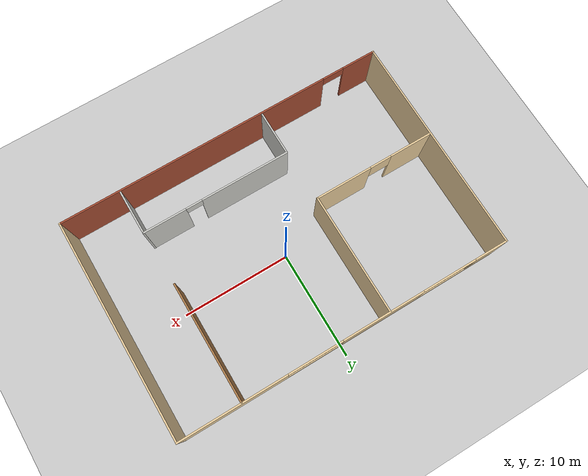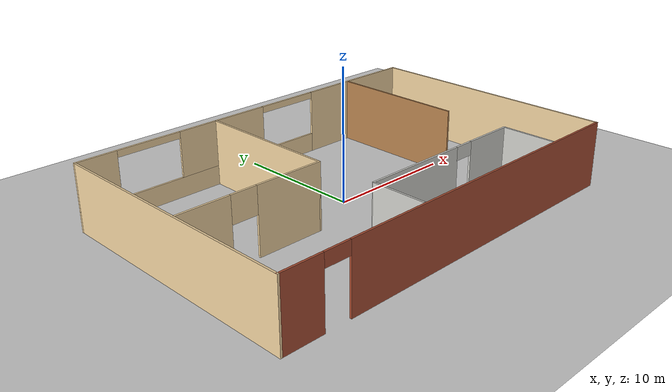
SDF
<sdf version="1.6">
 <world name="default">
  <model name="ground_plane">
   <static>1</static>
   <link name="link">
    <collision name="collision">
     <geometry><plane><normal>0 0 1</normal><size>100 100</size></plane></geometry>
     <surface><friction><ode><mu>100</mu><mu2>50</mu2></ode></friction></surface>
    </collision>
    <visual name="visual">
     <cast_shadows>0</cast_shadows>
     <geometry><plane><normal>0 0 1</normal><size>100 100</size></plane></geometry>
     <material>
      <script><uri>file://media/materials/scripts/gazebo.material</uri><name>Gazebo/Grey</name></script>
     </material>
    </visual>
   </link>
  </model>
  <model name="house_robot">
   <link name="Wall_103">
    <pose>-3.96202 4.4525 0 0 -0 1.5708</pose>
    <visual name="Wall_103_Visual">
     <pose>0 0 2.5 0 -0 0</pose>
     <geometry><box><size>11 0.15 5</size></box></geometry>
     <material>
      <script><uri>file://media/materials/scripts/gazebo.material</uri><name>Gazebo/Grey</name></script>
      <ambient>0.921569 0.807843 0.615686 1</ambient>
      <diffuse>0.7 0.7 0.7 1</diffuse>
      <specular>0.01 0.01 0.01 1</specular>
      <emissive>0 0 0 1</emissive>
     </material>
    </visual>
    <collision name="Wall_103_Collision">
     <pose>0 0 2.5 0 -0 0</pose>
     <geometry><box><size>11 0.15 5</size></box></geometry>
     <surface>
      <friction>
       <ode><mu>1</mu><mu2>1</mu2><fdir1>0 0 0</fdir1><slip1>0</slip1><slip2>0</slip2></ode>
       <torsional>
        <coefficient>1</coefficient>
        <patch_radius>0</patch_radius>
        <surface_radius>0</surface_radius>
        <use_patch_radius>1</use_patch_radius>
        <ode><slip>0</slip></ode>
       </torsional>
      </friction>
      <bounce><restitution_coefficient>0</restitution_coefficient><threshold>1e+06</threshold></bounce>
      <contact>
       <collide_without_contact>0</collide_without_contact>
       <collide_without_contact_bitmask>1</collide_without_contact_bitmask>
       <collide_bitmask>1</collide_bitmask>
       <ode>
        <soft_cfm>0</soft_cfm>
        <soft_erp>0.2</soft_erp>
        <kp>1e+13</kp>
        <kd>1</kd>
        <max_vel>0.01</max_vel>
        <min_depth>0</min_depth>
       </ode>
       <bullet>
        <split_impulse>1</split_impulse>
        <split_impulse_penetration_threshold>-0.01</split_impulse_penetration_threshold>
        <soft_cfm>0</soft_cfm>
        <soft_erp>0.2</soft_erp>
        <kp>1e+13</kp>
        <kd>1</kd>
       </bullet>
      </contact>
     </surface>
    </collision>
   </link>
   <link name="Wall_105">
    <pose>9.54899 4.5795 0 0 0 -1.5708</pose>
    <visual name="Wall_105_Visual">
     <pose>0 0 2.5 0 -0 0</pose>
     <geometry><box><size>10.75 0.15 5</size></box></geometry>
     <material>
      <script><uri>file://media/materials/scripts/gazebo.material</uri><name>Gazebo/Wood</name></script>
      <ambient>0.921569 0.807843 0.615686 1</ambient>
      <diffuse>1 1 1 1</diffuse>
      <specular>0.2 0.2 0.2 1</specular>
      <emissive>0 0 0 1</emissive>
     </material>
    </visual>
    <collision name="Wall_105_Collision">
     <pose>0 0 2.5 0 -0 0</pose>
     <geometry><box><size>10.75 0.15 5</size></box></geometry>
     <surface>
      <friction>
       <ode><mu>1</mu><mu2>1</mu2><fdir1>0 0 0</fdir1><slip1>0</slip1><slip2>0</slip2></ode>
       <torsional>
        <coefficient>1</coefficient>
        <patch_radius>0</patch_radius>
        <surface_radius>0</surface_radius>
        <use_patch_radius>1</use_patch_radius>
        <ode><slip>0</slip></ode>
       </torsional>
      </friction>
      <bounce><restitution_coefficient>0</restitution_coefficient><threshold>1e+06</threshold></bounce>
      <contact>
       <collide_without_contact>0</collide_without_contact>
       <collide_without_contact_bitmask>1</collide_without_contact_bitmask>
       <collide_bitmask>1</collide_bitmask>
       <ode>
        <soft_cfm>0</soft_cfm>
        <soft_erp>0.2</soft_erp>
        <kp>1e+13</kp>
        <kd>1</kd>
        <max_vel>0.01</max_vel>
        <min_depth>0</min_depth>
       </ode>
       <bullet>
        <split_impulse>1</split_impulse>
        <split_impulse_penetration_threshold>-0.01</split_impulse_penetration_threshold>
        <soft_cfm>0</soft_cfm>
        <soft_erp>0.2</soft_erp>
        <kp>1e+13</kp>
        <kd>1</kd>
       </bullet>
      </contact>
     </surface>
    </collision>
   </link>
   <link name="Wall_107">
    <pose>15.175 0.0265 0 0 -0 1.5708</pose>
    <visual name="Wall_107_Visual">
     <pose>0 0 2.5 0 -0 0</pose>
     <geometry><box><size>20 0.15 5</size></box></geometry>
     <material>
      <script><uri>file://media/materials/scripts/gazebo.material</uri><name>Gazebo/Grey</name></script>
      <ambient>0.921569 0.807843 0.615686 1</ambient>
      <diffuse>0.7 0.7 0.7 1</diffuse>
      <specular>0.01 0.01 0.01 1</specular>
      <emissive>0 0 0 1</emissive>
     </material>
    </visual>
    <collision name="Wall_107_Collision">
     <pose>0 0 2.5 0 -0 0</pose>
     <geometry><box><size>20 0.15 5</size></box></geometry>
     <surface>
      <friction>
       <ode><mu>1</mu><mu2>1</mu2><fdir1>0 0 0</fdir1><slip1>0</slip1><slip2>0</slip2></ode>
       <torsional>
        <coefficient>1</coefficient>
        <patch_radius>0</patch_radius>
        <surface_radius>0</surface_radius>
        <use_patch_radius>1</use_patch_radius>
        <ode><slip>0</slip></ode>
       </torsional>
      </friction>
      <bounce><restitution_coefficient>0</restitution_coefficient><threshold>1e+06</threshold></bounce>
      <contact>
       <collide_without_contact>0</collide_without_contact>
       <collide_without_contact_bitmask>1</collide_without_contact_bitmask>
       <collide_bitmask>1</collide_bitmask>
       <ode>
        <soft_cfm>0</soft_cfm>
        <soft_erp>0.2</soft_erp>
        <kp>1e+13</kp>
        <kd>1</kd>
        <max_vel>0.01</max_vel>
        <min_depth>0</min_depth>
       </ode>
       <bullet>
        <split_impulse>1</split_impulse>
        <split_impulse_penetration_threshold>-0.01</split_impulse_penetration_threshold>
        <soft_cfm>0</soft_cfm>
        <soft_erp>0.2</soft_erp>
        <kp>1e+13</kp>
        <kd>1</kd>
       </bullet>
      </contact>
     </surface>
    </collision>
   </link>
   <link name="Wall_108">
    <pose>-1.5e-05 9.9515 0 0 -0 3.14159</pose>
    <visual name="Wall_108_Visual_1">
     <pose>4.92284 0 0.75 0 -0 0</pose>
     <geometry><box><size>20.6543 0.15 1.5</size></box></geometry>
     <material>
      <script><uri>file://media/materials/scripts/gazebo.material</uri><name>Gazebo/Grey</name></script>
      <ambient>0.921569 0.807843 0.615686 1</ambient>
      <diffuse>0.7 0.7 0.7 1</diffuse>
      <specular>0.01 0.01 0.01 1</specular>
      <emissive>0 0 0 1</emissive>
     </material>
    </visual>
    <visual name="Wall_108_Visual_4">
     <pose>-2.90432 0 4.75 0 -0 0</pose>
     <geometry><box><size>5 0.15 0.5</size></box></geometry>
     <material>
      <script><uri>file://media/materials/scripts/gazebo.material</uri><name>Gazebo/Grey</name></script>
      <ambient>0.921569 0.807843 0.615686 1</ambient>
      <diffuse>0.7 0.7 0.7 1</diffuse>
      <specular>0.01 0.01 0.01 1</specular>
      <emissive>0 0 0 1</emissive>
     </material>
    </visual>
    <visual name="Wall_108_Visual_5">
     <pose>9.64746 0 4.75 0 -0 0</pose>
     <geometry><box><size>5 0.15 0.5</size></box></geometry>
     <material>
      <script><uri>file://media/materials/scripts/gazebo.material</uri><name>Gazebo/Grey</name></script>
      <ambient>0.921569 0.807843 0.615686 1</ambient>
      <diffuse>0.7 0.7 0.7 1</diffuse>
      <specular>0.01 0.01 0.01 1</specular>
      <emissive>0 0 0 1</emissive>
     </material>
    </visual>
    <visual name="Wall_108_Visual_2">
     <pose>3.37157 0 3.25 0 -0 0</pose>
     <geometry><box><size>7.55178 0.15 3.5</size></box></geometry>
     <material>
      <script><uri>file://media/materials/scripts/gazebo.material</uri><name>Gazebo/Grey</name></script>
      <ambient>0.921569 0.807843 0.615686 1</ambient>
      <diffuse>0.7 0.7 0.7 1</diffuse>
      <specular>0.01 0.01 0.01 1</specular>
      <emissive>0 0 0 1</emissive>
     </material>
    </visual>
    <visual name="Wall_108_Visual_0">
     <pose>-10.3272 0 2.5 0 -0 0</pose>
     <geometry><box><size>9.84568 0.15 5</size></box></geometry>
     <material>
      <script><uri>file://media/materials/scripts/gazebo.material</uri><name>Gazebo/Grey</name></script>
      <ambient>0.921569 0.807843 0.615686 1</ambient>
      <diffuse>0.7 0.7 0.7 1</diffuse>
      <specular>0.01 0.01 0.01 1</specular>
      <emissive>0 0 0 1</emissive>
     </material>
    </visual>
    <visual name="Wall_108_Visual_3">
     <pose>13.6987 0 3.25 0 -0 0</pose>
     <geometry><box><size>3.10254 0.15 3.5</size></box></geometry>
     <material>
      <script><uri>file://media/materials/scripts/gazebo.material</uri><name>Gazebo/Grey</name></script>
      <ambient>0.921569 0.807843 0.615686 1</ambient>
      <diffuse>0.7 0.7 0.7 1</diffuse>
      <specular>0.01 0.01 0.01 1</specular>
      <emissive>0 0 0 1</emissive>
     </material>
    </visual>
    <collision name="Wall_108_Collision_0">
     <pose>-10.3272 0 2.5 0 -0 0</pose>
     <geometry><box><size>9.84568 0.15 5</size></box></geometry>
     <surface>
      <friction>
       <ode><mu>1</mu><mu2>1</mu2><fdir1>0 0 0</fdir1><slip1>0</slip1><slip2>0</slip2></ode>
       <torsional>
        <coefficient>1</coefficient>
        <patch_radius>0</patch_radius>
        <surface_radius>0</surface_radius>
        <use_patch_radius>1</use_patch_radius>
        <ode><slip>0</slip></ode>
       </torsional>
      </friction>
      <bounce><restitution_coefficient>0</restitution_coefficient><threshold>1e+06</threshold></bounce>
      <contact>
       <collide_without_contact>0</collide_without_contact>
       <collide_without_contact_bitmask>1</collide_without_contact_bitmask>
       <collide_bitmask>1</collide_bitmask>
       <ode>
        <soft_cfm>0</soft_cfm>
        <soft_erp>0.2</soft_erp>
        <kp>1e+13</kp>
        <kd>1</kd>
        <max_vel>0.01</max_vel>
        <min_depth>0</min_depth>
       </ode>
       <bullet>
        <split_impulse>1</split_impulse>
        <split_impulse_penetration_threshold>-0.01</split_impulse_penetration_threshold>
        <soft_cfm>0</soft_cfm>
        <soft_erp>0.2</soft_erp>
        <kp>1e+13</kp>
        <kd>1</kd>
       </bullet>
      </contact>
     </surface>
    </collision>
    <collision name="Wall_108_Collision_1">
     <pose>4.92284 0 0.75 0 -0 0</pose>
     <geometry><box><size>20.6543 0.15 1.5</size></box></geometry>
     <surface>
      <friction>
       <ode><mu>1</mu><mu2>1</mu2><fdir1>0 0 0</fdir1><slip1>0</slip1><slip2>0</slip2></ode>
       <torsional>
        <coefficient>1</coefficient>
        <patch_radius>0</patch_radius>
        <surface_radius>0</surface_radius>
        <use_patch_radius>1</use_patch_radius>
        <ode><slip>0</slip></ode>
       </torsional>
      </friction>
      <bounce><restitution_coefficient>0</restitution_coefficient><threshold>1e+06</threshold></bounce>
      <contact>
       <collide_without_contact>0</collide_without_contact>
       <collide_without_contact_bitmask>1</collide_without_contact_bitmask>
       <collide_bitmask>1</collide_bitmask>
       <ode>
        <soft_cfm>0</soft_cfm>
        <soft_erp>0.2</soft_erp>
        <kp>1e+13</kp>
        <kd>1</kd>
        <max_vel>0.01</max_vel>
        <min_depth>0</min_depth>
       </ode>
       <bullet>
        <split_impulse>1</split_impulse>
        <split_impulse_penetration_threshold>-0.01</split_impulse_penetration_threshold>
        <soft_cfm>0</soft_cfm>
        <soft_erp>0.2</soft_erp>
        <kp>1e+13</kp>
        <kd>1</kd>
       </bullet>
      </contact>
     </surface>
    </collision>
    <collision name="Wall_108_Collision_4">
     <pose>-2.90432 0 4.75 0 -0 0</pose>
     <geometry><box><size>5 0.15 0.5</size></box></geometry>
     <surface>
      <friction>
       <ode><mu>1</mu><mu2>1</mu2><fdir1>0 0 0</fdir1><slip1>0</slip1><slip2>0</slip2></ode>
       <torsional>
        <coefficient>1</coefficient>
        <patch_radius>0</patch_radius>
        <surface_radius>0</surface_radius>
        <use_patch_radius>1</use_patch_radius>
        <ode><slip>0</slip></ode>
       </torsional>
      </friction>
      <bounce><restitution_coefficient>0</restitution_coefficient><threshold>1e+06</threshold></bounce>
      <contact>
       <collide_without_contact>0</collide_without_contact>
       <collide_without_contact_bitmask>1</collide_without_contact_bitmask>
       <collide_bitmask>1</collide_bitmask>
       <ode>
        <soft_cfm>0</soft_cfm>
        <soft_erp>0.2</soft_erp>
        <kp>1e+13</kp>
        <kd>1</kd>
        <max_vel>0.01</max_vel>
        <min_depth>0</min_depth>
       </ode>
       <bullet>
        <split_impulse>1</split_impulse>
        <split_impulse_penetration_threshold>-0.01</split_impulse_penetration_threshold>
        <soft_cfm>0</soft_cfm>
        <soft_erp>0.2</soft_erp>
        <kp>1e+13</kp>
        <kd>1</kd>
       </bullet>
      </contact>
     </surface>
    </collision>
    <collision name="Wall_108_Collision_2">
     <pose>3.37157 0 3.25 0 -0 0</pose>
     <geometry><box><size>7.55178 0.15 3.5</size></box></geometry>
     <surface>
      <friction>
       <ode><mu>1</mu><mu2>1</mu2><fdir1>0 0 0</fdir1><slip1>0</slip1><slip2>0</slip2></ode>
       <torsional>
        <coefficient>1</coefficient>
        <patch_radius>0</patch_radius>
        <surface_radius>0</surface_radius>
        <use_patch_radius>1</use_patch_radius>
        <ode><slip>0</slip></ode>
       </torsional>
      </friction>
      <bounce><restitution_coefficient>0</restitution_coefficient><threshold>1e+06</threshold></bounce>
      <contact>
       <collide_without_contact>0</collide_without_contact>
       <collide_without_contact_bitmask>1</collide_without_contact_bitmask>
       <collide_bitmask>1</collide_bitmask>
       <ode>
        <soft_cfm>0</soft_cfm>
        <soft_erp>0.2</soft_erp>
        <kp>1e+13</kp>
        <kd>1</kd>
        <max_vel>0.01</max_vel>
        <min_depth>0</min_depth>
       </ode>
       <bullet>
        <split_impulse>1</split_impulse>
        <split_impulse_penetration_threshold>-0.01</split_impulse_penetration_threshold>
        <soft_cfm>0</soft_cfm>
        <soft_erp>0.2</soft_erp>
        <kp>1e+13</kp>
        <kd>1</kd>
       </bullet>
      </contact>
     </surface>
    </collision>
    <collision name="Wall_108_Collision_3">
     <pose>13.6987 0 3.25 0 -0 0</pose>
     <geometry><box><size>3.10254 0.15 3.5</size></box></geometry>
     <surface>
      <friction>
       <ode><mu>1</mu><mu2>1</mu2><fdir1>0 0 0</fdir1><slip1>0</slip1><slip2>0</slip2></ode>
       <torsional>
        <coefficient>1</coefficient>
        <patch_radius>0</patch_radius>
        <surface_radius>0</surface_radius>
        <use_patch_radius>1</use_patch_radius>
        <ode><slip>0</slip></ode>
       </torsional>
      </friction>
      <bounce><restitution_coefficient>0</restitution_coefficient><threshold>1e+06</threshold></bounce>
      <contact>
       <collide_without_contact>0</collide_without_contact>
       <collide_without_contact_bitmask>1</collide_without_contact_bitmask>
       <collide_bitmask>1</collide_bitmask>
       <ode>
        <soft_cfm>0</soft_cfm>
        <soft_erp>0.2</soft_erp>
        <kp>1e+13</kp>
        <kd>1</kd>
        <max_vel>0.01</max_vel>
        <min_depth>0</min_depth>
       </ode>
       <bullet>
        <split_impulse>1</split_impulse>
        <split_impulse_penetration_threshold>-0.01</split_impulse_penetration_threshold>
        <soft_cfm>0</soft_cfm>
        <soft_erp>0.2</soft_erp>
        <kp>1e+13</kp>
        <kd>1</kd>
       </bullet>
      </contact>
     </surface>
    </collision>
    <collision name="Wall_108_Collision_5">
     <pose>9.64746 0 4.75 0 -0 0</pose>
     <geometry><box><size>5 0.15 0.5</size></box></geometry>
     <surface>
      <friction>
       <ode><mu>1</mu><mu2>1</mu2><fdir1>0 0 0</fdir1><slip1>0</slip1><slip2>0</slip2></ode>
       <torsional>
        <coefficient>1</coefficient>
        <patch_radius>0</patch_radius>
        <surface_radius>0</surface_radius>
        <use_patch_radius>1</use_patch_radius>
        <ode><slip>0</slip></ode>
       </torsional>
      </friction>
      <bounce><restitution_coefficient>0</restitution_coefficient><threshold>1e+06</threshold></bounce>
      <contact>
       <collide_without_contact>0</collide_without_contact>
       <collide_without_contact_bitmask>1</collide_without_contact_bitmask>
       <collide_bitmask>1</collide_bitmask>
       <ode>
        <soft_cfm>0</soft_cfm>
        <soft_erp>0.2</soft_erp>
        <kp>1e+13</kp>
        <kd>1</kd>
        <max_vel>0.01</max_vel>
        <min_depth>0</min_depth>
       </ode>
       <bullet>
        <split_impulse>1</split_impulse>
        <split_impulse_penetration_threshold>-0.01</split_impulse_penetration_threshold>
        <soft_cfm>0</soft_cfm>
        <soft_erp>0.2</soft_erp>
        <kp>1e+13</kp>
        <kd>1</kd>
       </bullet>
      </contact>
     </surface>
    </collision>
   </link>
   <link name="Wall_109">
    <pose>-15.175 0.0265 0 0 0 -1.5708</pose>
    <visual name="Wall_109_Visual">
     <pose>0 0 2.5 0 -0 0</pose>
     <geometry><box><size>20 0.15 5</size></box></geometry>
     <material>
      <script><uri>file://media/materials/scripts/gazebo.material</uri><name>Gazebo/Grey</name></script>
      <ambient>0.921569 0.807843 0.615686 1</ambient>
      <diffuse>0.7 0.7 0.7 1</diffuse>
      <specular>0.01 0.01 0.01 1</specular>
      <emissive>0 0 0 1</emissive>
     </material>
    </visual>
    <collision name="Wall_109_Collision">
     <pose>0 0 2.5 0 -0 0</pose>
     <geometry><box><size>20 0.15 5</size></box></geometry>
     <surface>
      <friction>
       <ode><mu>1</mu><mu2>1</mu2><fdir1>0 0 0</fdir1><slip1>0</slip1><slip2>0</slip2></ode>
       <torsional>
        <coefficient>1</coefficient>
        <patch_radius>0</patch_radius>
        <surface_radius>0</surface_radius>
        <use_patch_radius>1</use_patch_radius>
        <ode><slip>0</slip></ode>
       </torsional>
      </friction>
      <bounce><restitution_coefficient>0</restitution_coefficient><threshold>1e+06</threshold></bounce>
      <contact>
       <collide_without_contact>0</collide_without_contact>
       <collide_without_contact_bitmask>1</collide_without_contact_bitmask>
       <collide_bitmask>1</collide_bitmask>
       <ode>
        <soft_cfm>0</soft_cfm>
        <soft_erp>0.2</soft_erp>
        <kp>1e+13</kp>
        <kd>1</kd>
        <max_vel>0.01</max_vel>
        <min_depth>0</min_depth>
       </ode>
       <bullet>
        <split_impulse>1</split_impulse>
        <split_impulse_penetration_threshold>-0.01</split_impulse_penetration_threshold>
        <soft_cfm>0</soft_cfm>
        <soft_erp>0.2</soft_erp>
        <kp>1e+13</kp>
        <kd>1</kd>
       </bullet>
      </contact>
     </surface>
    </collision>
   </link>
   <link name="Wall_119">
    <pose>9.67953 -7.71239 0 0 -0 1.5708</pose>
    <inertial>
     <inertia><ixx>nan</ixx><ixy>0</ixy><ixz>0</ixz><iyy>nan</iyy><iyz>0</iyz><izz>nan</izz></inertia>
     <mass>0</mass>
    </inertial>
    <visual name="Wall_119_Visual">
     <pose>0 0 2.5 0 -0 0</pose>
     <geometry><box><size>4.17951 0.15 5</size></box></geometry>
     <material>
      <script><uri>file://media/materials/scripts/gazebo.material</uri><name>Gazebo/CeilingTiled</name></script>
      <ambient>0.921569 0.807843 0.615686 1</ambient>
      <diffuse>1 1 1 1</diffuse>
      <specular>0 0 0 1</specular>
      <emissive>0 0 0 1</emissive>
     </material>
    </visual>
    <collision name="Wall_119_Collision">
     <pose>0 0 2.5 0 -0 0</pose>
     <geometry><box><size>4.17951 0.15 5</size></box></geometry>
     <surface>
      <friction>
       <ode><mu>1</mu><mu2>1</mu2><fdir1>0 0 0</fdir1><slip1>0</slip1><slip2>0</slip2></ode>
       <torsional>
        <coefficient>1</coefficient>
        <patch_radius>0</patch_radius>
        <surface_radius>0</surface_radius>
        <use_patch_radius>1</use_patch_radius>
        <ode><slip>0</slip></ode>
       </torsional>
      </friction>
      <bounce><restitution_coefficient>0</restitution_coefficient><threshold>1e+06</threshold></bounce>
      <contact>
       <collide_without_contact>0</collide_without_contact>
       <collide_without_contact_bitmask>1</collide_without_contact_bitmask>
       <collide_bitmask>1</collide_bitmask>
       <ode>
        <soft_cfm>0</soft_cfm>
        <soft_erp>0.2</soft_erp>
        <kp>1e+13</kp>
        <kd>1</kd>
        <max_vel>0.01</max_vel>
        <min_depth>0</min_depth>
       </ode>
       <bullet>
        <split_impulse>1</split_impulse>
        <split_impulse_penetration_threshold>-0.01</split_impulse_penetration_threshold>
        <soft_cfm>0</soft_cfm>
        <soft_erp>0.2</soft_erp>
        <kp>1e+13</kp>
        <kd>1</kd>
       </bullet>
      </contact>
     </surface>
    </collision>
   </link>
   <link name="Wall_120">
    <pose>2.89875 -5.72264 0 0 -0 3.14159</pose>
    <inertial>
     <inertia><ixx>nan</ixx><ixy>0</ixy><ixz>0</ixz><iyy>nan</iyy><iyz>0</iyz><izz>nan</izz></inertia>
     <mass>0</mass>
    </inertial>
    <visual name="Wall_120_Visual_0">
     <pose>-4.81655 0 2.5 0 -0 0</pose>
     <geometry><box><size>3.97669 0.15 5</size></box></geometry>
     <material>
      <script><uri>file://media/materials/scripts/gazebo.material</uri><name>Gazebo/CeilingTiled</name></script>
      <ambient>0.921569 0.807843 0.615686 1</ambient>
      <diffuse>1 1 1 1</diffuse>
      <specular>0 0 0 1</specular>
      <emissive>0 0 0 1</emissive>
     </material>
    </visual>
    <visual name="Wall_120_Visual_1">
     <pose>2.71536 0 2.5 0 -0 0</pose>
     <geometry><box><size>8.22824 0.15 5</size></box></geometry>
     <material>
      <script><uri>file://media/materials/scripts/gazebo.material</uri><name>Gazebo/CeilingTiled</name></script>
      <ambient>0.921569 0.807843 0.615686 1</ambient>
      <diffuse>1 1 1 1</diffuse>
      <specular>0 0 0 1</specular>
      <emissive>0 0 0 1</emissive>
     </material>
    </visual>
    <visual name="Wall_120_Visual_2">
     <pose>-2.10119 0 4.5 0 -0 0</pose>
     <geometry><box><size>1.51755 0.15 1</size></box></geometry>
     <material>
      <script><uri>file://media/materials/scripts/gazebo.material</uri><name>Gazebo/CeilingTiled</name></script>
      <ambient>0.921569 0.807843 0.615686 1</ambient>
      <diffuse>1 1 1 1</diffuse>
      <specular>0 0 0 1</specular>
      <emissive>0 0 0 1</emissive>
     </material>
    </visual>
    <collision name="Wall_120_Collision_2">
     <pose>-2.10119 0 4.5 0 -0 0</pose>
     <geometry><box><size>1.51755 0.15 1</size></box></geometry>
     <surface>
      <friction>
       <ode><mu>1</mu><mu2>1</mu2><fdir1>0 0 0</fdir1><slip1>0</slip1><slip2>0</slip2></ode>
       <torsional>
        <coefficient>1</coefficient>
        <patch_radius>0</patch_radius>
        <surface_radius>0</surface_radius>
        <use_patch_radius>1</use_patch_radius>
        <ode><slip>0</slip></ode>
       </torsional>
      </friction>
      <bounce><restitution_coefficient>0</restitution_coefficient><threshold>1e+06</threshold></bounce>
      <contact>
       <collide_without_contact>0</collide_without_contact>
       <collide_without_contact_bitmask>1</collide_without_contact_bitmask>
       <collide_bitmask>1</collide_bitmask>
       <ode>
        <soft_cfm>0</soft_cfm>
        <soft_erp>0.2</soft_erp>
        <kp>1e+13</kp>
        <kd>1</kd>
        <max_vel>0.01</max_vel>
        <min_depth>0</min_depth>
       </ode>
       <bullet>
        <split_impulse>1</split_impulse>
        <split_impulse_penetration_threshold>-0.01</split_impulse_penetration_threshold>
        <soft_cfm>0</soft_cfm>
        <soft_erp>0.2</soft_erp>
        <kp>1e+13</kp>
        <kd>1</kd>
       </bullet>
      </contact>
     </surface>
    </collision>
    <collision name="Wall_120_Collision_0">
     <pose>-4.81655 0 2.5 0 -0 0</pose>
     <geometry><box><size>3.97669 0.15 5</size></box></geometry>
     <surface>
      <friction>
       <ode><mu>1</mu><mu2>1</mu2><fdir1>0 0 0</fdir1><slip1>0</slip1><slip2>0</slip2></ode>
       <torsional>
        <coefficient>1</coefficient>
        <patch_radius>0</patch_radius>
        <surface_radius>0</surface_radius>
        <use_patch_radius>1</use_patch_radius>
        <ode><slip>0</slip></ode>
       </torsional>
      </friction>
      <bounce><restitution_coefficient>0</restitution_coefficient><threshold>1e+06</threshold></bounce>
      <contact>
       <collide_without_contact>0</collide_without_contact>
       <collide_without_contact_bitmask>1</collide_without_contact_bitmask>
       <collide_bitmask>1</collide_bitmask>
       <ode>
        <soft_cfm>0</soft_cfm>
        <soft_erp>0.2</soft_erp>
        <kp>1e+13</kp>
        <kd>1</kd>
        <max_vel>0.01</max_vel>
        <min_depth>0</min_depth>
       </ode>
       <bullet>
        <split_impulse>1</split_impulse>
        <split_impulse_penetration_threshold>-0.01</split_impulse_penetration_threshold>
        <soft_cfm>0</soft_cfm>
        <soft_erp>0.2</soft_erp>
        <kp>1e+13</kp>
        <kd>1</kd>
       </bullet>
      </contact>
     </surface>
    </collision>
    <collision name="Wall_120_Collision_1">
     <pose>2.71536 0 2.5 0 -0 0</pose>
     <geometry><box><size>8.22824 0.15 5</size></box></geometry>
     <surface>
      <friction>
       <ode><mu>1</mu><mu2>1</mu2><fdir1>0 0 0</fdir1><slip1>0</slip1><slip2>0</slip2></ode>
       <torsional>
        <coefficient>1</coefficient>
        <patch_radius>0</patch_radius>
        <surface_radius>0</surface_radius>
        <use_patch_radius>1</use_patch_radius>
        <ode><slip>0</slip></ode>
       </torsional>
      </friction>
      <bounce><restitution_coefficient>0</restitution_coefficient><threshold>1e+06</threshold></bounce>
      <contact>
       <collide_without_contact>0</collide_without_contact>
       <collide_without_contact_bitmask>1</collide_without_contact_bitmask>
       <collide_bitmask>1</collide_bitmask>
       <ode>
        <soft_cfm>0</soft_cfm>
        <soft_erp>0.2</soft_erp>
        <kp>1e+13</kp>
        <kd>1</kd>
        <max_vel>0.01</max_vel>
        <min_depth>0</min_depth>
       </ode>
       <bullet>
        <split_impulse>1</split_impulse>
        <split_impulse_penetration_threshold>-0.01</split_impulse_penetration_threshold>
        <soft_cfm>0</soft_cfm>
        <soft_erp>0.2</soft_erp>
        <kp>1e+13</kp>
        <kd>1</kd>
       </bullet>
      </contact>
     </surface>
    </collision>
   </link>
   <link name="Wall_121">
    <pose>-3.87202 -7.75642 0 0 0 -1.5708</pose>
    <inertial>
     <inertia><ixx>nan</ixx><ixy>0</ixy><ixz>0</ixz><iyy>nan</iyy><iyz>0</iyz><izz>nan</izz></inertia>
     <mass>0</mass>
    </inertial>
    <visual name="Wall_121_Visual">
     <pose>0 0 2.5 0 -0 0</pose>
     <geometry><box><size>4.07058 0.15 5</size></box></geometry>
     <material>
      <script><uri>file://media/materials/scripts/gazebo.material</uri><name>Gazebo/CeilingTiled</name></script>
      <ambient>0.921569 0.807843 0.615686 1</ambient>
      <diffuse>1 1 1 1</diffuse>
      <specular>0 0 0 1</specular>
      <emissive>0 0 0 1</emissive>
     </material>
    </visual>
    <collision name="Wall_121_Collision">
     <pose>0 0 2.5 0 -0 0</pose>
     <geometry><box><size>4.07058 0.15 5</size></box></geometry>
     <surface>
      <friction>
       <ode><mu>1</mu><mu2>1</mu2><fdir1>0 0 0</fdir1><slip1>0</slip1><slip2>0</slip2></ode>
       <torsional>
        <coefficient>1</coefficient>
        <patch_radius>0</patch_radius>
        <surface_radius>0</surface_radius>
        <use_patch_radius>1</use_patch_radius>
        <ode><slip>0</slip></ode>
       </torsional>
      </friction>
      <bounce><restitution_coefficient>0</restitution_coefficient><threshold>1e+06</threshold></bounce>
      <contact>
       <collide_without_contact>0</collide_without_contact>
       <collide_without_contact_bitmask>1</collide_without_contact_bitmask>
       <collide_bitmask>1</collide_bitmask>
       <ode>
        <soft_cfm>0</soft_cfm>
        <soft_erp>0.2</soft_erp>
        <kp>1e+13</kp>
        <kd>1</kd>
        <max_vel>0.01</max_vel>
        <min_depth>0</min_depth>
       </ode>
       <bullet>
        <split_impulse>1</split_impulse>
        <split_impulse_penetration_threshold>-0.01</split_impulse_penetration_threshold>
        <soft_cfm>0</soft_cfm>
        <soft_erp>0.2</soft_erp>
        <kp>1e+13</kp>
        <kd>1</kd>
       </bullet>
      </contact>
     </surface>
    </collision>
   </link>
   <link name="Wall_50">
    <pose>1.6e-05 -9.8985 0 0 -0 3.14159</pose>
    <visual name="Wall_50_Visual_0">
     <pose>-2.59234 0 2.5 0 -0 0</pose>
     <geometry><box><size>25.3153 0.15 5</size></box></geometry>
     <material>
      <script><uri>file://media/materials/scripts/gazebo.material</uri><name>Gazebo/Bricks</name></script>
      <ambient>1 1 1 1</ambient>
      <diffuse>1 1 1 1</diffuse>
      <specular>0.2 0.2 0.2 1</specular>
      <emissive>0 0 0 1</emissive>
     </material>
    </visual>
    <visual name="Wall_50_Visual_1">
     <pose>13.6577 0 2.5 0 -0 0</pose>
     <geometry><box><size>3.18469 0.15 5</size></box></geometry>
     <material>
      <script><uri>file://media/materials/scripts/gazebo.material</uri><name>Gazebo/Bricks</name></script>
      <ambient>1 1 1 1</ambient>
      <diffuse>1 1 1 1</diffuse>
      <specular>0.2 0.2 0.2 1</specular>
      <emissive>0 0 0 1</emissive>
     </material>
    </visual>
    <visual name="Wall_50_Visual_2">
     <pose>11.0653 0 4.5 0 -0 0</pose>
     <geometry><box><size>2 0.15 1</size></box></geometry>
     <material>
      <script><uri>file://media/materials/scripts/gazebo.material</uri><name>Gazebo/Bricks</name></script>
      <ambient>1 1 1 1</ambient>
      <diffuse>1 1 1 1</diffuse>
      <specular>0.2 0.2 0.2 1</specular>
      <emissive>0 0 0 1</emissive>
     </material>
    </visual>
    <collision name="Wall_50_Collision_0">
     <pose>-2.59234 0 2.5 0 -0 0</pose>
     <geometry><box><size>25.3153 0.15 5</size></box></geometry>
     <surface>
      <friction>
       <ode><mu>1</mu><mu2>1</mu2><fdir1>0 0 0</fdir1><slip1>0</slip1><slip2>0</slip2></ode>
       <torsional>
        <coefficient>1</coefficient>
        <patch_radius>0</patch_radius>
        <surface_radius>0</surface_radius>
        <use_patch_radius>1</use_patch_radius>
        <ode><slip>0</slip></ode>
       </torsional>
      </friction>
      <bounce><restitution_coefficient>0</restitution_coefficient><threshold>1e+06</threshold></bounce>
      <contact>
       <collide_without_contact>0</collide_without_contact>
       <collide_without_contact_bitmask>1</collide_without_contact_bitmask>
       <collide_bitmask>1</collide_bitmask>
       <ode>
        <soft_cfm>0</soft_cfm>
        <soft_erp>0.2</soft_erp>
        <kp>1e+13</kp>
        <kd>1</kd>
        <max_vel>0.01</max_vel>
        <min_depth>0</min_depth>
       </ode>
       <bullet>
        <split_impulse>1</split_impulse>
        <split_impulse_penetration_threshold>-0.01</split_impulse_penetration_threshold>
        <soft_cfm>0</soft_cfm>
        <soft_erp>0.2</soft_erp>
        <kp>1e+13</kp>
        <kd>1</kd>
       </bullet>
      </contact>
     </surface>
    </collision>
    <collision name="Wall_50_Collision_1">
     <pose>13.6577 0 2.5 0 -0 0</pose>
     <geometry><box><size>3.18469 0.15 5</size></box></geometry>
     <surface>
      <friction>
       <ode><mu>1</mu><mu2>1</mu2><fdir1>0 0 0</fdir1><slip1>0</slip1><slip2>0</slip2></ode>
       <torsional>
        <coefficient>1</coefficient>
        <patch_radius>0</patch_radius>
        <surface_radius>0</surface_radius>
        <use_patch_radius>1</use_patch_radius>
        <ode><slip>0</slip></ode>
       </torsional>
      </friction>
      <bounce><restitution_coefficient>0</restitution_coefficient><threshold>1e+06</threshold></bounce>
      <contact>
       <collide_without_contact>0</collide_without_contact>
       <collide_without_contact_bitmask>1</collide_without_contact_bitmask>
       <collide_bitmask>1</collide_bitmask>
       <ode>
        <soft_cfm>0</soft_cfm>
        <soft_erp>0.2</soft_erp>
        <kp>1e+13</kp>
        <kd>1</kd>
        <max_vel>0.01</max_vel>
        <min_depth>0</min_depth>
       </ode>
       <bullet>
        <split_impulse>1</split_impulse>
        <split_impulse_penetration_threshold>-0.01</split_impulse_penetration_threshold>
        <soft_cfm>0</soft_cfm>
        <soft_erp>0.2</soft_erp>
        <kp>1e+13</kp>
        <kd>1</kd>
       </bullet>
      </contact>
     </surface>
    </collision>
    <collision name="Wall_50_Collision_2">
     <pose>11.0653 0 4.5 0 -0 0</pose>
     <geometry><box><size>2 0.15 1</size></box></geometry>
     <surface>
      <friction>
       <ode><mu>1</mu><mu2>1</mu2><fdir1>0 0 0</fdir1><slip1>0</slip1><slip2>0</slip2></ode>
       <torsional>
        <coefficient>1</coefficient>
        <patch_radius>0</patch_radius>
        <surface_radius>0</surface_radius>
        <use_patch_radius>1</use_patch_radius>
        <ode><slip>0</slip></ode>
       </torsional>
      </friction>
      <bounce><restitution_coefficient>0</restitution_coefficient><threshold>1e+06</threshold></bounce>
      <contact>
       <collide_without_contact>0</collide_without_contact>
       <collide_without_contact_bitmask>1</collide_without_contact_bitmask>
       <collide_bitmask>1</collide_bitmask>
       <ode>
        <soft_cfm>0</soft_cfm>
        <soft_erp>0.2</soft_erp>
        <kp>1e+13</kp>
        <kd>1</kd>
        <max_vel>0.01</max_vel>
        <min_depth>0</min_depth>
       </ode>
       <bullet>
        <split_impulse>1</split_impulse>
        <split_impulse_penetration_threshold>-0.01</split_impulse_penetration_threshold>
        <soft_cfm>0</soft_cfm>
        <soft_erp>0.2</soft_erp>
        <kp>1e+13</kp>
        <kd>1</kd>
       </bullet>
      </contact>
     </surface>
    </collision>
   </link>
   <link name="Wall_92">
    <pose>-9.51201 -0.9725 0 0 -0 0</pose>
    <visual name="Wall_92_Visual_0">
     <pose>-3.6411 0 2.5 0 -0 0</pose>
     <geometry><box><size>3.96779 0.15 5</size></box></geometry>
     <material>
      <script><uri>file://media/materials/scripts/gazebo.material</uri><name>Gazebo/Grey</name></script>
      <ambient>0.921569 0.807843 0.615686 1</ambient>
      <diffuse>0.7 0.7 0.7 1</diffuse>
      <specular>0.01 0.01 0.01 1</specular>
      <emissive>0 0 0 1</emissive>
     </material>
    </visual>
    <visual name="Wall_92_Visual_2">
     <pose>-0.657207 0 4 0 -0 0</pose>
     <geometry><box><size>2 0.15 2</size></box></geometry>
     <material>
      <script><uri>file://media/materials/scripts/gazebo.material</uri><name>Gazebo/Grey</name></script>
      <ambient>0.921569 0.807843 0.615686 1</ambient>
      <diffuse>0.7 0.7 0.7 1</diffuse>
      <specular>0.01 0.01 0.01 1</specular>
      <emissive>0 0 0 1</emissive>
     </material>
    </visual>
    <visual name="Wall_92_Visual_1">
     <pose>2.9839 0 2.5 0 -0 0</pose>
     <geometry><box><size>5.28221 0.15 5</size></box></geometry>
     <material>
      <script><uri>file://media/materials/scripts/gazebo.material</uri><name>Gazebo/Grey</name></script>
      <ambient>0.921569 0.807843 0.615686 1</ambient>
      <diffuse>0.7 0.7 0.7 1</diffuse>
      <specular>0.01 0.01 0.01 1</specular>
      <emissive>0 0 0 1</emissive>
     </material>
    </visual>
    <collision name="Wall_92_Collision_0">
     <pose>-3.6411 0 2.5 0 -0 0</pose>
     <geometry><box><size>3.96779 0.15 5</size></box></geometry>
     <surface>
      <friction>
       <ode><mu>1</mu><mu2>1</mu2><fdir1>0 0 0</fdir1><slip1>0</slip1><slip2>0</slip2></ode>
       <torsional>
        <coefficient>1</coefficient>
        <patch_radius>0</patch_radius>
        <surface_radius>0</surface_radius>
        <use_patch_radius>1</use_patch_radius>
        <ode><slip>0</slip></ode>
       </torsional>
      </friction>
      <bounce><restitution_coefficient>0</restitution_coefficient><threshold>1e+06</threshold></bounce>
      <contact>
       <collide_without_contact>0</collide_without_contact>
       <collide_without_contact_bitmask>1</collide_without_contact_bitmask>
       <collide_bitmask>1</collide_bitmask>
       <ode>
        <soft_cfm>0</soft_cfm>
        <soft_erp>0.2</soft_erp>
        <kp>1e+13</kp>
        <kd>1</kd>
        <max_vel>0.01</max_vel>
        <min_depth>0</min_depth>
       </ode>
       <bullet>
        <split_impulse>1</split_impulse>
        <split_impulse_penetration_threshold>-0.01</split_impulse_penetration_threshold>
        <soft_cfm>0</soft_cfm>
        <soft_erp>0.2</soft_erp>
        <kp>1e+13</kp>
        <kd>1</kd>
       </bullet>
      </contact>
     </surface>
    </collision>
    <collision name="Wall_92_Collision_2">
     <pose>-0.657207 0 4 0 -0 0</pose>
     <geometry><box><size>2 0.15 2</size></box></geometry>
     <surface>
      <friction>
       <ode><mu>1</mu><mu2>1</mu2><fdir1>0 0 0</fdir1><slip1>0</slip1><slip2>0</slip2></ode>
       <torsional>
        <coefficient>1</coefficient>
        <patch_radius>0</patch_radius>
        <surface_radius>0</surface_radius>
        <use_patch_radius>1</use_patch_radius>
        <ode><slip>0</slip></ode>
       </torsional>
      </friction>
      <bounce><restitution_coefficient>0</restitution_coefficient><threshold>1e+06</threshold></bounce>
      <contact>
       <collide_without_contact>0</collide_without_contact>
       <collide_without_contact_bitmask>1</collide_without_contact_bitmask>
       <collide_bitmask>1</collide_bitmask>
       <ode>
        <soft_cfm>0</soft_cfm>
        <soft_erp>0.2</soft_erp>
        <kp>1e+13</kp>
        <kd>1</kd>
        <max_vel>0.01</max_vel>
        <min_depth>0</min_depth>
       </ode>
       <bullet>
        <split_impulse>1</split_impulse>
        <split_impulse_penetration_threshold>-0.01</split_impulse_penetration_threshold>
        <soft_cfm>0</soft_cfm>
        <soft_erp>0.2</soft_erp>
        <kp>1e+13</kp>
        <kd>1</kd>
       </bullet>
      </contact>
     </surface>
    </collision>
    <collision name="Wall_92_Collision_1">
     <pose>2.9839 0 2.5 0 -0 0</pose>
     <geometry><box><size>5.28221 0.15 5</size></box></geometry>
     <surface>
      <friction>
       <ode><mu>1</mu><mu2>1</mu2><fdir1>0 0 0</fdir1><slip1>0</slip1><slip2>0</slip2></ode>
       <torsional>
        <coefficient>1</coefficient>
        <patch_radius>0</patch_radius>
        <surface_radius>0</surface_radius>
        <use_patch_radius>1</use_patch_radius>
        <ode><slip>0</slip></ode>
       </torsional>
      </friction>
      <bounce><restitution_coefficient>0</restitution_coefficient><threshold>1e+06</threshold></bounce>
      <contact>
       <collide_without_contact>0</collide_without_contact>
       <collide_without_contact_bitmask>1</collide_without_contact_bitmask>
       <collide_bitmask>1</collide_bitmask>
       <ode>
        <soft_cfm>0</soft_cfm>
        <soft_erp>0.2</soft_erp>
        <kp>1e+13</kp>
        <kd>1</kd>
        <max_vel>0.01</max_vel>
        <min_depth>0</min_depth>
       </ode>
       <bullet>
        <split_impulse>1</split_impulse>
        <split_impulse_penetration_threshold>-0.01</split_impulse_penetration_threshold>
        <soft_cfm>0</soft_cfm>
        <soft_erp>0.2</soft_erp>
        <kp>1e+13</kp>
        <kd>1</kd>
       </bullet>
      </contact>
     </surface>
    </collision>
   </link>
   <static>1</static>
   <pose>-0.23825 -1.00936 0 0 -0 0</pose>
  </model>
 </world>
</sdf>
